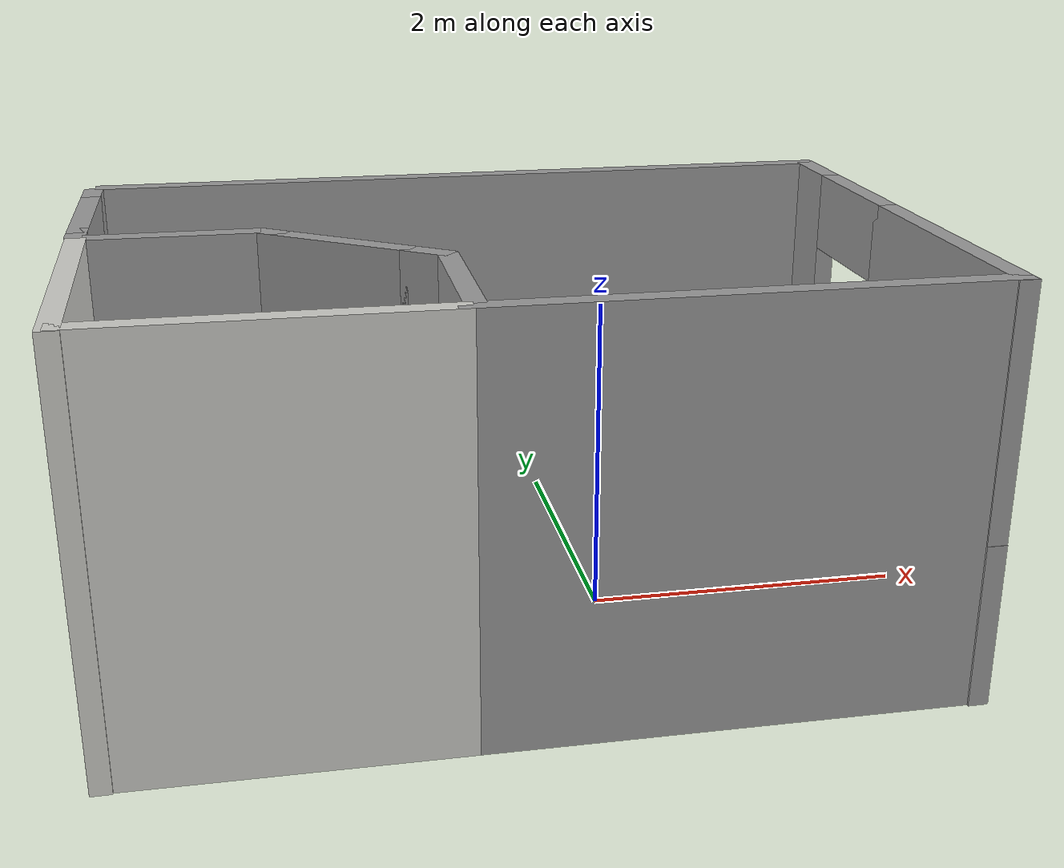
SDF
<?xml version='1.0'?>
<sdf version='1.6'>
  <model name='P22-IF'>
    <pose frame=''>-0.880315 -0.256219 0 0 -0 0</pose>
    <link name='Wall_12'>
      <collision name='Wall_12_Collision'>
        <geometry>
          <box>
            <size>1 0.12 2.5</size>
          </box>
        </geometry>
        <pose frame=''>0 0 1.25 0 -0 0</pose>
      </collision>
      <visual name='Wall_12_Visual'>
        <pose frame=''>0 0 1.25 0 -0 0</pose>
        <geometry>
          <box>
            <size>1 0.12 2.5</size>
          </box>
        </geometry>
        <material>
          <script>
            <uri>file://media/materials/scripts/gazebo.material</uri>
            <name>Gazebo/Grey</name>
          </script>
          <ambient>1 1 1 1</ambient>
        </material>
        <meta>
          <layer>0</layer>
        </meta>
      </visual>
      <pose frame=''>-1.604369 0.42219 0 0 -0 0</pose>
    </link>
    <link name='Wall_13'>
      <pose frame=''>-0.56 0.03 0 0 -0 -0.62</pose>
      <visual name='Wall_13_Visual_0'>
        <pose frame=''>-0.6 0 1.25 0 -0 0</pose>
        <geometry>
          <box>
            <size>0.2 0.12 2.5</size>
          </box>
        </geometry>
        <material>
          <script>
            <uri>file://media/materials/scripts/gazebo.material</uri>
            <name>Gazebo/Grey</name>
          </script>
          <ambient>1 1 1 1</ambient>
        </material>
        <meta>
          <layer>0</layer>
        </meta>
      </visual>
      <collision name='Wall_13_Collision_0'>
        <geometry>
          <box>
            <size>0.2 0.12 2.5</size>
          </box>
        </geometry>
        <pose frame=''>-0.6 0 1.25 0 -0 0</pose>
      </collision>
      <visual name='Wall_13_Visual_1'>
        <pose frame=''>0.43 0 1.25 0 -0 0</pose>
        <geometry>
          <box>
            <size>0.3 0.12 2.5</size>
          </box>
        </geometry>
        <material>
          <script>
            <uri>file://media/materials/scripts/gazebo.material</uri>
            <name>Gazebo/Grey</name>
          </script>
          <ambient>1 1 1 1</ambient>
        </material>
        <meta>
          <layer>0</layer>
        </meta>
      </visual>
      <collision name='Wall_13_Collision_1'>
        <geometry>
          <box>
            <size>0.3 0.12 2.5</size>
          </box>
        </geometry>
        <pose frame=''>0.43 0 1.25 0 -0 0</pose>
      </collision>
      <visual name='Wall_13_Visual_2'>
        <pose frame=''>-0.173235 0 2.25 0 -0 0</pose>
        <geometry>
          <box>
            <size>1 0.12 0.5</size>
          </box>
        </geometry>
        <material>
          <script>
            <uri>file://media/materials/scripts/gazebo.material</uri>
            <name>Gazebo/Grey</name>
          </script>
          <ambient>1 1 1 1</ambient>
        </material>
        <meta>
          <layer>0</layer>
        </meta>
      </visual>
      <collision name='Wall_13_Collision_2'>
        <geometry>
          <box>
            <size>1 0.12 0.5</size>
          </box>
        </geometry>
        <pose frame=''>-0.173235 0 2.25 0 -0 0</pose>
      </collision>
    </link>
    <link name='Wall_14'>
      <collision name='Wall_14_Collision'>
        <geometry>
          <box>
            <size>1 0.12 2.5</size>
          </box>
        </geometry>
        <pose frame=''>0 0 1.25 0 -0 0</pose>
      </collision>
      <visual name='Wall_14_Visual'>
        <pose frame=''>0 0 1.25 0 -0 0</pose>
        <geometry>
          <box>
            <size>1 0.12 2.5</size>
          </box>
          <scale>0.8 0.8 0.8</scale>
        </geometry>
        <material>
          <script>
            <uri>file://media/materials/scripts/gazebo.material</uri>
            <name>Gazebo/Grey</name>
          </script>
          <ambient>1 1 1 1</ambient>
        </material>
        <meta>
          <layer>0</layer>
        </meta>
      </visual>
      <pose frame=''>-0.112685 -0.775378 0 0 -0 -1.5708</pose>
    </link>
    <link name='Wall_16'>
      <collision name='Wall_16_Collision'>
        <geometry>
          <box>
            <size>3 0.12 2.5</size>
          </box>
        </geometry>
        <pose frame=''>0 0 1.25 0 -0 0</pose>
      </collision>
      <visual name='Wall_16_Visual'>
        <pose frame=''>0 0 1.25 0 -0 0</pose>
        <geometry>
          <box>
            <size>3 0.12 2.5</size>
          </box>
        </geometry>
        <material>
          <script>
            <uri>file://media/materials/scripts/gazebo.material</uri>
            <name>Gazebo/Grey</name>
          </script>
          <ambient>1 1 1 1</ambient>
        </material>
        <meta>
          <layer>0</layer>
        </meta>
      </visual>
      <pose frame=''>1.29431 -1.30378 0 0 -0 3.14159</pose>
    </link>
    <link name='Wall_18'>
      <collision name='Wall_18_Collision'>
        <geometry>
          <box>
            <size>2.009428 0.12 2.5</size>
          </box>
        </geometry>
        <pose frame=''>0 0 1.25 0 -0 0</pose>
      </collision>
      <visual name='Wall_18_Visual'>
        <pose frame=''>0 0 1.25 0 -0 0</pose>
        <geometry>
          <box>
            <size>2.009428 0.12 2.5</size>
          </box>
        </geometry>
        <material>
          <script>
            <uri>file://media/materials/scripts/gazebo.material</uri>
            <name>Gazebo/CeilingTiled</name>
          </script>
          <ambient>0.921569 0.807843 0.615686 1</ambient>
        </material>
        <meta>
          <layer>0</layer>
        </meta>
      </visual>
      <pose frame=''>-1.12819 -1.30378 0 0 -0 3.14159</pose>
    </link>
    <link name='Wall_19'>
      <collision name='Wall_19_Collision'>
        <geometry>
          <box>
            <size>1.8 0.12 2.5</size>
          </box>
        </geometry>
        <pose frame=''>0 0 1.25 0 -0 0</pose>
      </collision>
      <visual name='Wall_19_Visual'>
        <pose frame=''>0 0 1.25 0 -0 0</pose>
        <geometry>
          <box>
            <size>1.8 0.12 2.5</size>
          </box>
        </geometry>
        <material>
          <script>
            <uri>file://media/materials/scripts/gazebo.material</uri>
            <name>Gazebo/CeilingTiled</name>
          </script>
          <ambient>0.921569 0.807843 0.615686 1</ambient>
        </material>
        <meta>
          <layer>0</layer>
        </meta>
      </visual>
      <pose frame=''>-2.12218 -0.475781 0 0 -0 1.58762</pose>
    </link>
    <link name='Wall_21'>
      <pose frame=''>-2.14219 1.1 0 0 -0 1.56898</pose>
      <visual name='Wall_21_Visual_0'>
        <pose frame=''>-0.55 0 1.25 0 -0 0</pose>
        <geometry>
          <box>
            <size>0.25 0.12 2.5</size>
          </box>
        </geometry>
        <material>
          <script>
            <uri>file://media/materials/scripts/gazebo.material</uri>
            <name>Gazebo/Grey</name>
          </script>
          <ambient>1 1 1 1</ambient>
        </material>
        <meta>
          <layer>0</layer>
        </meta>
      </visual>
      <collision name='Wall_21_Collision_0'>
        <geometry>
          <box>
            <size>0.25 0.12 2.5</size>
          </box>
        </geometry>
        <pose frame=''>-0.55 0 1.25 0 -0 0</pose>
      </collision>
      <visual name='Wall_21_Visual_1'>
        <pose frame=''>0.55 0 1.25 0 -0 0</pose>
        <geometry>
          <box>
            <size>0.25 0.12 2.5</size>
          </box>
        </geometry>
        <material>
          <script>
            <uri>file://media/materials/scripts/gazebo.material</uri>
            <name>Gazebo/Grey</name>
          </script>
          <ambient>1 1 1 1</ambient>
        </material>
        <meta>
          <layer>0</layer>
        </meta>
      </visual>
      <collision name='Wall_21_Collision_1'>
        <geometry>
          <box>
            <size>0.25 0.12 2.5</size>
          </box>
        </geometry>
        <pose frame=''>0.55 0 1.25 0 -0 0</pose>
      </collision>
      <visual name='Wall_21_Visual_2'>
        <pose frame=''>0 0 2.25 0 -0 0</pose>
        <geometry>
          <box>
            <size>1.1 0.12 0.5</size>
          </box>
        </geometry>
        <material>
          <script>
            <uri>file://media/materials/scripts/gazebo.material</uri>
            <name>Gazebo/Grey</name>
          </script>
          <ambient>1 1 1 1</ambient>
        </material>
        <meta>
          <layer>0</layer>
        </meta>
      </visual>
      <collision name='Wall_21_Collision_2'>
        <geometry>
          <box>
            <size>1 0.12 0.5</size>
          </box>
        </geometry>
        <pose frame=''>0 0 2.25 0 -0 0</pose>
      </collision>
    </link>
    <link name='Wall_23'>
      <pose frame=''>2.72681 0.000219 0 0 -0 -1.56248</pose>
      <visual name='Wall_23_Visual_0'>
        <pose frame=''>-1.58201 0 1.25 0 -0 0</pose>
        <geometry>
          <box>
            <size>0.504748 0.12 2.5</size>
          </box>
        </geometry>
        <material>
          <script>
            <uri>file://media/materials/scripts/gazebo.material</uri>
            <name>Gazebo/Grey</name>
          </script>
          <ambient>1 1 1 1</ambient>
        </material>
        <meta>
          <layer>0</layer>
        </meta>
      </visual>
      <collision name='Wall_23_Collision_0'>
        <geometry>
          <box>
            <size>0.504748 0.12 2.5</size>
          </box>
        </geometry>
        <pose frame=''>-1.58201 0 1.25 0 -0 0</pose>
      </collision>
      <visual name='Wall_23_Visual_1'>
        <pose frame=''>0.0077374 0 0.5 0 -0 0</pose>
        <geometry>
          <box>
            <size>2.7403 0.12 1</size>
          </box>
        </geometry>
        <material>
          <script>
            <uri>file://media/materials/scripts/gazebo.material</uri>
            <name>Gazebo/Grey</name>
          </script>
          <ambient>1 1 1 1</ambient>
        </material>
        <meta>
          <layer>0</layer>
        </meta>
      </visual>
      <collision name='Wall_23_Collision_1'>
        <geometry>
          <box>
            <size>2.7403 0.12 1</size>
          </box>
        </geometry>
        <pose frame=''>0.0077374 0 0.5 0 -0 0</pose>
      </collision>
      <visual name='Wall_23_Visual_2'>
        <pose frame=''>0.46254 0 1.75 0 -0 0</pose>
        <geometry>
          <box>
            <size>1.823368 0.12 1.5</size>
          </box>
        </geometry>
        <material>
          <script>
            <uri>file://media/materials/scripts/gazebo.material</uri>
            <name>Gazebo/Grey</name>
          </script>
          <ambient>1 1 1 1</ambient>
        </material>
        <meta>
          <layer>0</layer>
        </meta>
      </visual>
      <collision name='Wall_23_Collision_2'>
        <geometry>
          <box>
            <size>1.823368 0.12 1.5</size>
          </box>
        </geometry>
        <pose frame=''>0.46254 0 1.75 0 -0 0</pose>
      </collision>
      <visual name='Wall_23_Visual_3'>
        <pose frame=''>-0.919469 0 2.25 0 -0 0</pose>
        <geometry>
          <box>
            <size>1.053034 0.12 0.5</size>
          </box>
        </geometry>
        <material>
          <script>
            <uri>file://media/materials/scripts/gazebo.material</uri>
            <name>Gazebo/Grey</name>
          </script>
          <ambient>1 1 1 1</ambient>
        </material>
        <meta>
          <layer>0</layer>
        </meta>
      </visual>
      <collision name='Wall_23_Collision_3'>
        <geometry>
          <box>
            <size>1.053034 0.12 0.5</size>
          </box>
        </geometry>
        <pose frame=''>-0.919469 0 2.25 0 -0 0</pose>
      </collision>
    </link>
    <link name='Wall_7'>
      <collision name='Wall_7_Collision'>
        <geometry>
          <box>
            <size>4.9 0.12 2.5</size>
          </box>
        </geometry>
        <pose frame=''>0 0 1.25 0 -0 0</pose>
      </collision>
      <visual name='Wall_7_Visual'>
        <pose frame=''>0 0 1.25 0 -0 0</pose>
        <geometry>
          <box>
            <size>4.9 0.12 2.5</size>
          </box>
        </geometry>
        <material>
          <script>
            <uri>file://media/materials/scripts/gazebo.material</uri>
            <name>Gazebo/Grey</name>
          </script>
          <ambient>1 1 1 1</ambient>
        </material>
        <meta>
          <layer>0</layer>
        </meta>
      </visual>
      <pose frame=''>0.315685 1.80422 0 0 -0 0</pose>
    </link>
    <static>1</static>
  </model>
</sdf>
